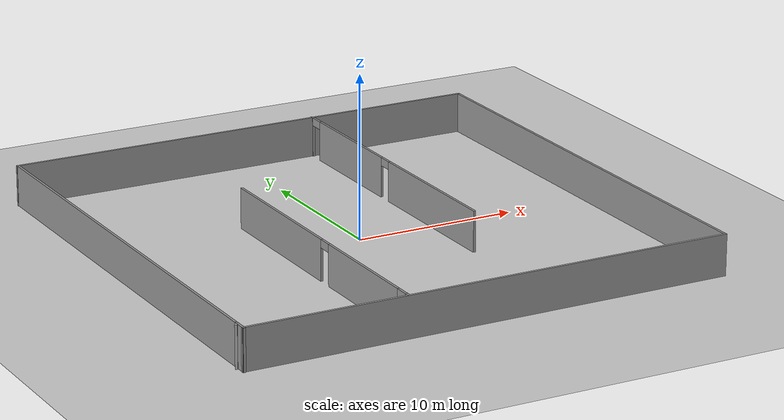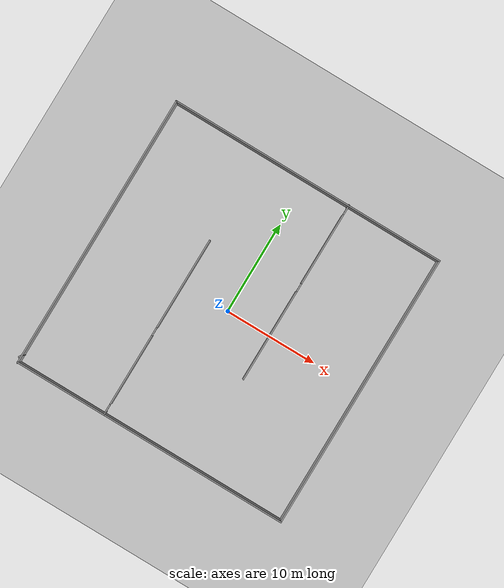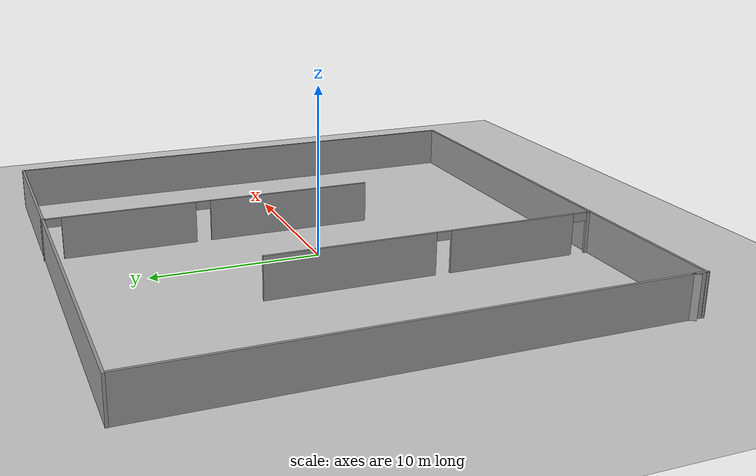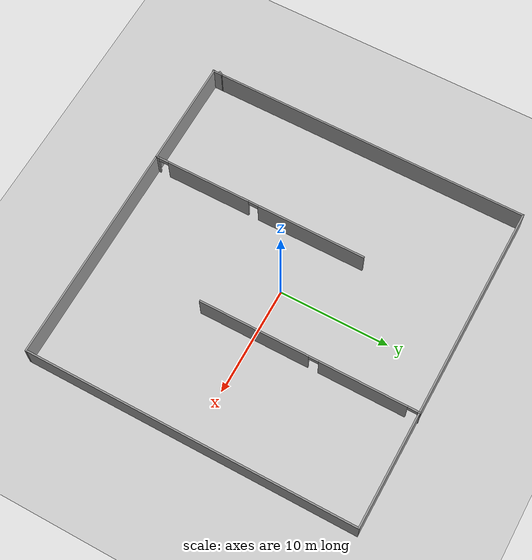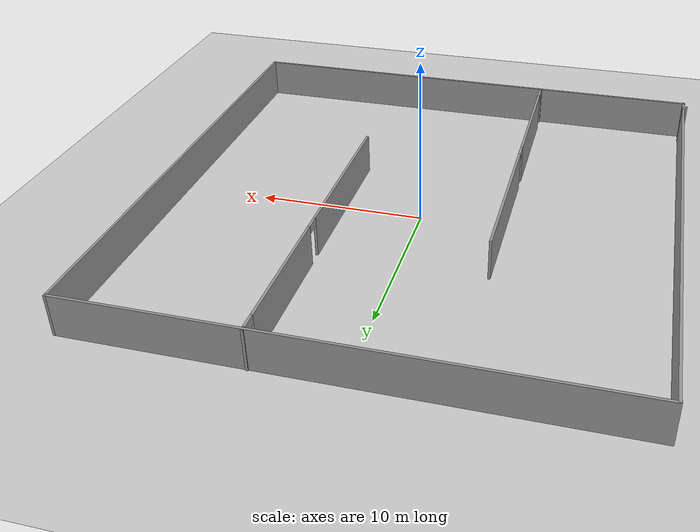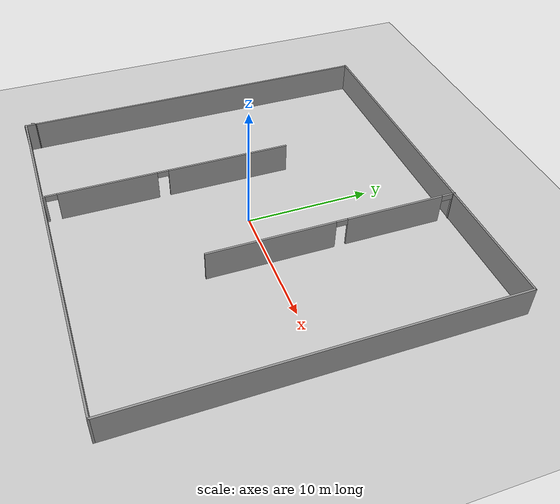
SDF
<sdf version="1.7">
 <world name="default">
  <light name="sun" type="directional">
   <pose>0 0 10 0 -0 0</pose>
   <diffuse>0.8 0.8 0.8 1</diffuse>
   <specular>0.2 0.2 0.2 1</specular>
   <attenuation>
    <range>1000</range>
    <constant>0.9</constant>
    <linear>0.01</linear>
    <quadratic>0.001</quadratic>
   </attenuation>
   <direction>-0.5 0.1 -0.9</direction>
   <spot><inner_angle>0</inner_angle><outer_angle>0</outer_angle><falloff>0</falloff></spot>
  </light>
  <model name="ground_plane">
   <static>1</static>
   <link name="link">
    <collision name="collision">
     <geometry><plane><normal>0 0 1</normal><size>100 100</size></plane></geometry>
     <surface><friction><ode><mu>100</mu><mu2>50</mu2></ode></friction></surface>
    </collision>
    <visual name="visual">
     <cast_shadows>0</cast_shadows>
     <geometry><plane><normal>0 0 1</normal><size>100 100</size></plane></geometry>
     <material>
      <script><uri>file://media/materials/scripts/gazebo.material</uri><name>Gazebo/Grey</name></script>
     </material>
    </visual>
   </link>
  </model>
  <gravity>0 0 -9.8</gravity>
  <magnetic_field>6e-06 2.3e-05 -4.2e-05</magnetic_field>
  <atmosphere type="adiabatic"/>
  <physics type="ode">
   <max_step_size>0.001</max_step_size>
   <real_time_factor>1</real_time_factor>
   <real_time_update_rate>0</real_time_update_rate>
  </physics>
  <scene><ambient>0.4 0.4 0.4 1</ambient><background>0.7 0.7 0.7 1</background><shadows>1</shadows></scene>
  <audio><device>default</device></audio>
  <spherical_coordinates>
   <surface_model>EARTH_WGS84</surface_model>
   <latitude_deg>0</latitude_deg>
   <longitude_deg>0</longitude_deg>
   <elevation>0</elevation>
   <heading_deg>0</heading_deg>
  </spherical_coordinates>
  <model name="complex">
   <link name="Wall_10">
    <collision name="Wall_10_Collision">
     <geometry><box><size>30.25 0.15 2.5</size></box></geometry>
     <pose>0 0 1.25 0 -0 0</pose>
    </collision>
    <visual name="Wall_10_Visual">
     <pose>0 0 1.25 0 -0 0</pose>
     <geometry><box><size>30.25 0.15 2.5</size></box></geometry>
     <material>
      <script><uri>file://media/materials/scripts/gazebo.material</uri><name>Gazebo/Grey</name></script>
      <ambient>1 1 1 1</ambient>
     </material>
     <meta><layer>0</layer></meta>
    </visual>
    <pose>0.086223 -14.9224 0 0 -0 3.14159</pose>
   </link>
   <link name="Wall_12">
    <collision name="Wall_12_Collision">
     <geometry><box><size>0.5 0.15 2.5</size></box></geometry>
     <pose>0 0 1.25 0 -0 0</pose>
    </collision>
    <visual name="Wall_12_Visual">
     <pose>0 0 1.25 0 -0 0</pose>
     <geometry><box><size>0.5 0.15 2.5</size></box></geometry>
     <material>
      <script><uri>file://media/materials/scripts/gazebo.material</uri><name>Gazebo/Grey</name></script>
      <ambient>0 0 0 1</ambient>
     </material>
     <meta><layer>0</layer></meta>
    </visual>
    <pose>-15.0213 -14.2529 0 0 -0 -2.0944</pose>
   </link>
   <link name="Wall_15">
    <pose>-5.09486 -4.97241 0 0 -0 -1.5708</pose>
    <visual name="Wall_15_Visual_0">
     <pose>-4.99774 0 1.25 0 -0 0</pose>
     <geometry><box><size>10.0045 0.15 2.5</size></box></geometry>
     <material>
      <script><uri>file://media/materials/scripts/gazebo.material</uri><name>Gazebo/Grey</name></script>
      <ambient>1 1 1 1</ambient>
     </material>
     <meta><layer>0</layer></meta>
    </visual>
    <collision name="Wall_15_Collision_0">
     <geometry><box><size>10.0045 0.15 2.5</size></box></geometry>
     <pose>-4.99774 0 1.25 0 -0 0</pose>
    </collision>
    <visual name="Wall_15_Visual_1">
     <pose>4.83796 0 1.25 0 -0 0</pose>
     <geometry><box><size>7.86689 0.15 2.5</size></box></geometry>
     <material>
      <script><uri>file://media/materials/scripts/gazebo.material</uri><name>Gazebo/Grey</name></script>
      <ambient>1 1 1 1</ambient>
     </material>
     <meta><layer>0</layer></meta>
    </visual>
    <collision name="Wall_15_Collision_1">
     <geometry><box><size>7.86689 0.15 2.5</size></box></geometry>
     <pose>4.83796 0 1.25 0 -0 0</pose>
    </collision>
    <visual name="Wall_15_Visual_2">
     <pose>9.8357 0 1.25 0 -0 0</pose>
     <geometry><box><size>0.328596 0.15 2.5</size></box></geometry>
     <material>
      <script><uri>file://media/materials/scripts/gazebo.material</uri><name>Gazebo/Grey</name></script>
      <ambient>1 1 1 1</ambient>
     </material>
     <meta><layer>0</layer></meta>
    </visual>
    <collision name="Wall_15_Collision_2">
     <geometry><box><size>0.328596 0.15 2.5</size></box></geometry>
     <pose>9.8357 0 1.25 0 -0 0</pose>
    </collision>
    <visual name="Wall_15_Visual_3">
     <pose>0.454515 0 2.25 0 -0 0</pose>
     <geometry><box><size>0.9 0.15 0.5</size></box></geometry>
     <material>
      <script><uri>file://media/materials/scripts/gazebo.material</uri><name>Gazebo/Grey</name></script>
      <ambient>1 1 1 1</ambient>
     </material>
     <meta><layer>0</layer></meta>
    </visual>
    <collision name="Wall_15_Collision_3">
     <geometry><box><size>0.9 0.15 0.5</size></box></geometry>
     <pose>0.454515 0 2.25 0 -0 0</pose>
    </collision>
    <visual name="Wall_15_Visual_4">
     <pose>9.2214 0 2.25 0 -0 0</pose>
     <geometry><box><size>0.9 0.15 0.5</size></box></geometry>
     <material>
      <script><uri>file://media/materials/scripts/gazebo.material</uri><name>Gazebo/Grey</name></script>
      <ambient>1 1 1 1</ambient>
     </material>
     <meta><layer>0</layer></meta>
    </visual>
    <collision name="Wall_15_Collision_4">
     <geometry><box><size>0.9 0.15 0.5</size></box></geometry>
     <pose>9.2214 0 2.25 0 -0 0</pose>
    </collision>
   </link>
   <link name="Wall_2">
    <collision name="Wall_2_Collision">
     <geometry><box><size>30 0.15 2.5</size></box></geometry>
     <pose>0 0 1.25 0 -0 0</pose>
    </collision>
    <visual name="Wall_2_Visual">
     <pose>0 0 1.25 0 -0 0</pose>
     <geometry><box><size>30 0.15 2.5</size></box></geometry>
     <material>
      <script><uri>file://media/materials/scripts/gazebo.material</uri><name>Gazebo/Grey</name></script>
      <ambient>1 1 1 1</ambient>
     </material>
     <meta><layer>0</layer></meta>
    </visual>
    <pose>-14.9428 -0.056573 0 0 -0 -1.5708</pose>
   </link>
   <link name="Wall_20">
    <pose>4.76148 5.05657 0 0 -0 1.5708</pose>
    <visual name="Wall_20_Visual_0">
     <pose>-4.96479 0 1.25 0 -0 0</pose>
     <geometry><box><size>10.0704 0.15 2.5</size></box></geometry>
     <material>
      <script><uri>file://media/materials/scripts/gazebo.material</uri><name>Gazebo/Grey</name></script>
      <ambient>1 1 1 1</ambient>
     </material>
     <meta><layer>0</layer></meta>
    </visual>
    <collision name="Wall_20_Collision_0">
     <geometry><box><size>10.0704 0.15 2.5</size></box></geometry>
     <pose>-4.96479 0 1.25 0 -0 0</pose>
    </collision>
    <visual name="Wall_20_Visual_1">
     <pose>4.90985 0 1.25 0 -0 0</pose>
     <geometry><box><size>7.87886 0.15 2.5</size></box></geometry>
     <material>
      <script><uri>file://media/materials/scripts/gazebo.material</uri><name>Gazebo/Grey</name></script>
      <ambient>1 1 1 1</ambient>
     </material>
     <meta><layer>0</layer></meta>
    </visual>
    <collision name="Wall_20_Collision_1">
     <geometry><box><size>7.87886 0.15 2.5</size></box></geometry>
     <pose>4.90985 0 1.25 0 -0 0</pose>
    </collision>
    <visual name="Wall_20_Visual_2">
     <pose>9.87464 0 1.25 0 -0 0</pose>
     <geometry><box><size>0.250722 0.15 2.5</size></box></geometry>
     <material>
      <script><uri>file://media/materials/scripts/gazebo.material</uri><name>Gazebo/Grey</name></script>
      <ambient>1 1 1 1</ambient>
     </material>
     <meta><layer>0</layer></meta>
    </visual>
    <collision name="Wall_20_Collision_2">
     <geometry><box><size>0.250722 0.15 2.5</size></box></geometry>
     <pose>9.87464 0 1.25 0 -0 0</pose>
    </collision>
    <visual name="Wall_20_Visual_3">
     <pose>0.520418 0 2.25 0 -0 0</pose>
     <geometry><box><size>0.9 0.15 0.5</size></box></geometry>
     <material>
      <script><uri>file://media/materials/scripts/gazebo.material</uri><name>Gazebo/Grey</name></script>
      <ambient>1 1 1 1</ambient>
     </material>
     <meta><layer>0</layer></meta>
    </visual>
    <collision name="Wall_20_Collision_3">
     <geometry><box><size>0.9 0.15 0.5</size></box></geometry>
     <pose>0.520418 0 2.25 0 -0 0</pose>
    </collision>
    <visual name="Wall_20_Visual_4">
     <pose>9.29928 0 2.25 0 -0 0</pose>
     <geometry><box><size>0.9 0.15 0.5</size></box></geometry>
     <material>
      <script><uri>file://media/materials/scripts/gazebo.material</uri><name>Gazebo/Grey</name></script>
      <ambient>1 1 1 1</ambient>
     </material>
     <meta><layer>0</layer></meta>
    </visual>
    <collision name="Wall_20_Collision_4">
     <geometry><box><size>0.9 0.15 0.5</size></box></geometry>
     <pose>9.29928 0 2.25 0 -0 0</pose>
    </collision>
   </link>
   <link name="Wall_6">
    <collision name="Wall_6_Collision">
     <geometry><box><size>30.25 0.15 2.5</size></box></geometry>
     <pose>0 0 1.25 0 -0 0</pose>
    </collision>
    <visual name="Wall_6_Visual">
     <pose>0 0 1.25 0 -0 0</pose>
     <geometry><box><size>30.25 0.15 2.5</size></box></geometry>
     <material>
      <script><uri>file://media/materials/scripts/gazebo.material</uri><name>Gazebo/Grey</name></script>
      <ambient>1 1 1 1</ambient>
     </material>
     <meta><layer>0</layer></meta>
    </visual>
    <pose>0.086223 14.9276 0 0 -0 0</pose>
   </link>
   <link name="Wall_9">
    <collision name="Wall_9_Collision">
     <geometry><box><size>30 0.15 2.5</size></box></geometry>
     <pose>0 0 1.25 0 -0 0</pose>
    </collision>
    <visual name="Wall_9_Visual">
     <pose>0 0 1.25 0 -0 0</pose>
     <geometry><box><size>30 0.15 2.5</size></box></geometry>
     <material>
      <script><uri>file://media/materials/scripts/gazebo.material</uri><name>Gazebo/Grey</name></script>
      <ambient>1 1 1 1</ambient>
     </material>
     <meta><layer>0</layer></meta>
    </visual>
    <pose>15.1362 0.002609 0 0 -0 -1.5708</pose>
   </link>
   <static>1</static>
  </model>
 </world>
</sdf>
